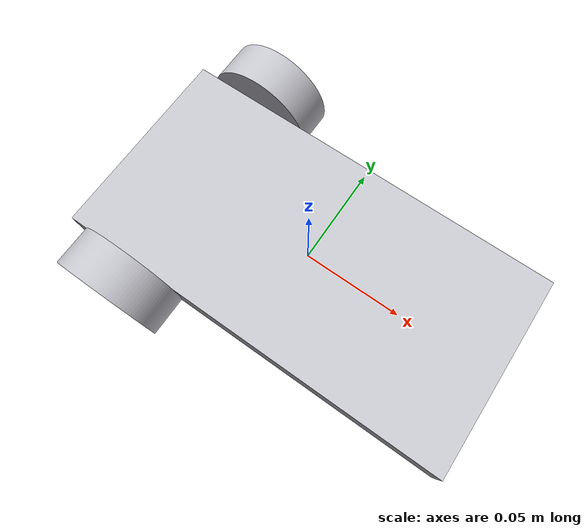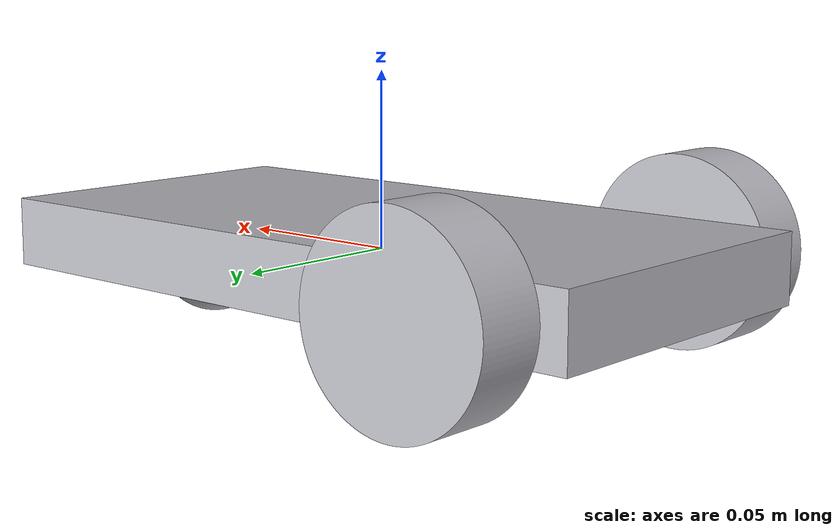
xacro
<?xml version="1.0" ?>
<robot name="robot" xmlns:xacro="http://www.ros.org/wiki/xacro">

<xacro:include filename="$(find diffy)/models/urdf/materials.xacro" />
<xacro:include filename="$(find diffy)/models/urdf/robot.trans" />
<xacro:include filename="$(find diffy)/models/urdf/robot.gazebo" />
<link name="base_link">
  <inertial>
    <origin xyz="0.0 0.0 0.0" rpy="0 0 0"/>
    <mass value="3.1399999999999997"/>
    <inertia ixx="0.002721" iyy="0.010571" izz="0.013083" ixy="0.0" iyz="0.0" ixz="0.0"/>
  </inertial>
  <visual>
    <origin xyz="0 0 0" rpy="0 0 0"/>
    <geometry>
      <mesh filename="file://$(find diffy)/models/meshes/base_link.stl" scale="0.001 0.001 0.001"/>
    </geometry>
    <material name="silver"/>
  </visual>
  <collision>
    <origin xyz="0 0 0" rpy="0 0 0"/>
    <geometry>
      <mesh filename="file://$(find diffy)/models/meshes/base_link.stl" scale="0.001 0.001 0.001"/>
    </geometry>
  </collision>
</link>

<link name="Wheel_1">
  <inertial>
    <origin xyz="0.035 -0.009999999999999981 5.981428822440112e-18" rpy="0 0 0"/>
    <mass value="0.3730052227515331"/>
    <inertia ixx="8.3e-05" iyy="0.000141" izz="8.3e-05" ixy="-0.0" iyz="-0.0" ixz="0.0"/>
  </inertial>
  <visual>
    <origin xyz="0.1 0.05 -0.0" rpy="0 0 0"/>
    <geometry>
      <mesh filename="file://$(find diffy)/models/meshes/Wheel_1.stl" scale="0.001 0.001 0.001"/>
    </geometry>
    <material name="silver"/>
  </visual>
  <collision>
    <origin xyz="0.1 0.05 -0.0" rpy="0 0 0"/>
    <geometry>
      <mesh filename="file://$(find diffy)/models/meshes/Wheel_1.stl" scale="0.001 0.001 0.001"/>
    </geometry>
  </collision>
</link>

<link name="Wheel_2">
  <inertial>
    <origin xyz="0.035 0.010000000000000016 -5.9814288224401115e-18" rpy="0 0 0"/>
    <mass value="0.3730052227515331"/>
    <inertia ixx="8.3e-05" iyy="0.000141" izz="8.3e-05" ixy="0.0" iyz="-0.0" ixz="-0.0"/>
  </inertial>
  <visual>
    <origin xyz="0.1 -0.05 -0.0" rpy="0 0 0"/>
    <geometry>
      <mesh filename="file://$(find diffy)/models/meshes/Wheel_2.stl" scale="0.001 0.001 0.001"/>
    </geometry>
    <material name="silver"/>
  </visual>
  <collision>
    <origin xyz="0.1 -0.05 -0.0" rpy="0 0 0"/>
    <geometry>
      <mesh filename="file://$(find diffy)/models/meshes/Wheel_2.stl" scale="0.001 0.001 0.001"/>
    </geometry>
  </collision>
</link>

<link name="CasterWheel_1">
  <inertial>
    <origin xyz="0.06999999999999999 -6.330200182349162e-18 -0.006562500000000001" rpy="0 0 0"/>
    <mass value="0.0881134927023249"/>
    <inertia ixx="7e-06" iyy="7e-06" izz="1.1e-05" ixy="-0.0" iyz="0.0" ixz="-0.0"/>
  </inertial>
  <visual>
    <origin xyz="-0.0 -0.0 0.01" rpy="0 0 0"/>
    <geometry>
      <mesh filename="file://$(find diffy)/models/meshes/CasterWheel_1.stl" scale="0.001 0.001 0.001"/>
    </geometry>
    <material name="silver"/>
  </visual>
  <collision>
    <origin xyz="-0.0 -0.0 0.01" rpy="0 0 0"/>
    <geometry>
      <mesh filename="file://$(find diffy)/models/meshes/CasterWheel_1.stl" scale="0.001 0.001 0.001"/>
    </geometry>
  </collision>
</link>

<joint name="Revolute 1" type="continuous">
  <origin xyz="-0.1 -0.05 0.0" rpy="0 0 0"/>
  <parent link="base_link"/>
  <child link="Wheel_1"/>
  <axis xyz="0.0 -1.0 0.0"/>
</joint>

<joint name="Revolute 2" type="continuous">
  <origin xyz="-0.1 0.05 0.0" rpy="0 0 0"/>
  <parent link="base_link"/>
  <child link="Wheel_2"/>
  <axis xyz="0.0 1.0 0.0"/>
</joint>

<joint name="Rigid 3" type="fixed">
  <origin xyz="0.0 0.0 -0.01" rpy="0 0 0"/>
  <parent link="base_link"/>
  <child link="CasterWheel_1"/>
</joint>

</robot>

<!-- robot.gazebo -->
<robot name="robot" xmlns:xacro="http://www.ros.org/wiki/xacro" >

<xacro:property name="body_color" value="Gazebo/Silver" />

<gazebo>
  <plugin name="control" filename="libgazebo_ros_control.so"/>
</gazebo>
<gazebo reference="base_link">
  <material>${body_color}</material>
  <mu1>0.2</mu1>
  <mu2>0.2</mu2>
  <selfCollide>true</selfCollide>
  <gravity>true</gravity>
</gazebo>

<gazebo reference="Wheel_1">
  <material>${body_color}</material>
  <mu1>0.2</mu1>
  <mu2>0.2</mu2>
  <selfCollide>true</selfCollide>
</gazebo>

<gazebo reference="Wheel_2">
  <material>${body_color}</material>
  <mu1>0.2</mu1>
  <mu2>0.2</mu2>
  <selfCollide>true</selfCollide>
</gazebo>

<gazebo reference="CasterWheel_1">
  <material>${body_color}</material>
  <mu1>0.2</mu1>
  <mu2>0.2</mu2>
  <selfCollide>true</selfCollide>
</gazebo>

</robot>
